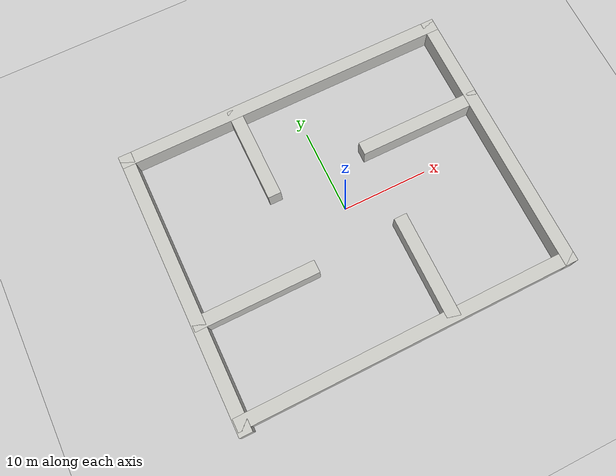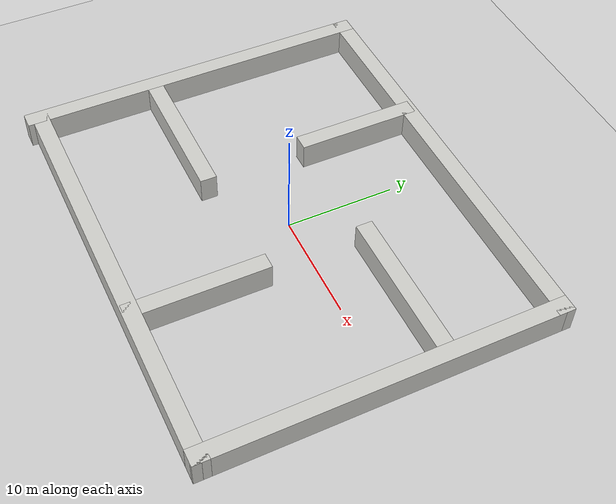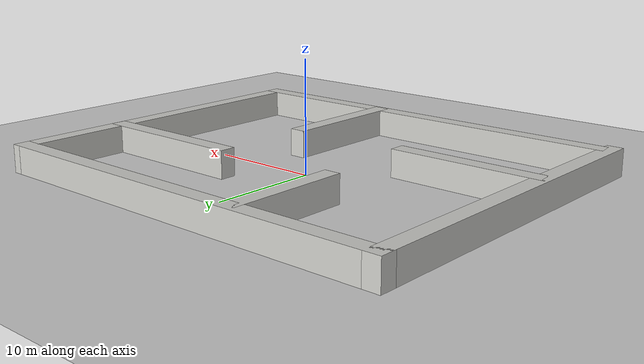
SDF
<sdf version="1.6">
 <world name="default">
  <light name="sun" type="directional">
   <pose>0 0 10 0 -0 0</pose>
   <diffuse>0.8 0.8 0.8 1</diffuse>
   <specular>0.1 0.1 0.1 1</specular>
   <attenuation>
    <range>1000</range>
    <constant>0.9</constant>
    <linear>0.01</linear>
    <quadratic>0.001</quadratic>
   </attenuation>
   <direction>-0.5 0.5 -1</direction>
  </light>
  <model name="ground_plane">
   <static>1</static>
   <link name="link">
    <collision name="collision">
     <geometry><plane><normal>0 0 1</normal><size>100 100</size></plane></geometry>
     <surface><friction><ode><mu>100</mu><mu2>50</mu2></ode></friction></surface>
    </collision>
    <visual name="visual">
     <cast_shadows>0</cast_shadows>
     <geometry><plane><normal>0 0 1</normal><size>100 100</size></plane></geometry>
     <material>
      <script><uri>file://media/materials/scripts/gazebo.material</uri><name>Gazebo/Grey</name></script>
     </material>
    </visual>
   </link>
  </model>
  <gravity>0 0 -9.8</gravity>
  <magnetic_field>6e-06 2.3e-05 -4.2e-05</magnetic_field>
  <atmosphere type="adiabatic"/>
  <physics name="default_physics" default="0" type="ode">
   <max_step_size>0.001</max_step_size>
   <real_time_factor>1</real_time_factor>
   <real_time_update_rate>1000</real_time_update_rate>
  </physics>
  <scene><ambient>0.4 0.4 0.4 1</ambient><background>0.7 0.7 0.7 1</background><shadows>1</shadows></scene>
  <spherical_coordinates>
   <surface_model>EARTH_WGS84</surface_model>
   <latitude_deg>0</latitude_deg>
   <longitude_deg>0</longitude_deg>
   <elevation>0</elevation>
   <heading_deg>0</heading_deg>
  </spherical_coordinates>
  <model name="simplemapmz">
   <pose>-0.45463 -0.739306 0 0 -0 0</pose>
   <link name="Wall_0">
    <collision name="Wall_0_Collision">
     <geometry><box><size>33.25 1.5 2.5</size></box></geometry>
     <pose>0 0 1.25 0 -0 0</pose>
    </collision>
    <visual name="Wall_0_Visual">
     <pose>0 0 1.25 0 -0 0</pose>
     <geometry><box><size>33.25 1.5 2.5</size></box></geometry>
     <material>
      <script><uri>file://media/materials/scripts/gazebo.material</uri><name>Gazebo/CeilingTiled</name></script>
      <ambient>0.921569 0.807843 0.615686 1</ambient>
     </material>
    </visual>
    <pose>-19.1131 -0.001652 0 0 -0 1.57081</pose>
   </link>
   <link name="Wall_10">
    <collision name="Wall_10_Collision">
     <geometry><box><size>14.3496 1.5 2.5</size></box></geometry>
     <pose>0 0 1.25 0 -0 0</pose>
    </collision>
    <visual name="Wall_10_Visual">
     <pose>0 0 1.25 0 -0 0</pose>
     <geometry><box><size>14.3496 1.5 2.5</size></box></geometry>
     <material>
      <script><uri>file://media/materials/scripts/gazebo.material</uri><name>Gazebo/CeilingTiled</name></script>
      <ambient>0.921569 0.807843 0.615686 1</ambient>
     </material>
    </visual>
    <pose>-12.5324 -4.26969 0 0 -0 0</pose>
   </link>
   <link name="Wall_13">
    <collision name="Wall_13_Collision">
     <geometry><box><size>14.85 1.5 2.5</size></box></geometry>
     <pose>0 0 1.25 0 -0 0</pose>
    </collision>
    <visual name="Wall_13_Visual">
     <pose>0 0 1.25 0 -0 0</pose>
     <geometry><box><size>14.85 1.5 2.5</size></box></geometry>
     <material>
      <script><uri>file://media/materials/scripts/gazebo.material</uri><name>Gazebo/CeilingTiled</name></script>
      <ambient>0.921569 0.807843 0.615686 1</ambient>
     </material>
    </visual>
    <pose>12.3146 5.60431 0 0 -0 3.14159</pose>
   </link>
   <link name="Wall_15">
    <collision name="Wall_15_Collision">
     <geometry><box><size>12.6003 1.5 2.5</size></box></geometry>
     <pose>0 0 1.25 0 -0 0</pose>
    </collision>
    <visual name="Wall_15_Visual">
     <pose>0 0 1.25 0 -0 0</pose>
     <geometry><box><size>12.6003 1.5 2.5</size></box></geometry>
     <material>
      <script><uri>file://media/materials/scripts/gazebo.material</uri><name>Gazebo/CeilingTiled</name></script>
      <ambient>0.921569 0.807843 0.615686 1</ambient>
     </material>
    </visual>
    <pose>5.12163 -9.56869 0 0 0 -1.5708</pose>
   </link>
   <link name="Wall_4">
    <collision name="Wall_4_Collision">
     <geometry><box><size>39.6005 1.5 2.5</size></box></geometry>
     <pose>0 0 1.25 0 -0 0</pose>
    </collision>
    <visual name="Wall_4_Visual">
     <pose>0 0 1.25 0 -0 0</pose>
     <geometry><box><size>39.6005 1.5 2.5</size></box></geometry>
     <material>
      <script><uri>file://media/materials/scripts/gazebo.material</uri><name>Gazebo/CeilingTiled</name></script>
      <ambient>0.921569 0.807843 0.615686 1</ambient>
     </material>
    </visual>
    <pose>-0.06337 15.8733 0 0 -0 0</pose>
   </link>
   <link name="Wall_5">
    <collision name="Wall_5_Collision">
     <geometry><box><size>32.596 1.5 2.5</size></box></geometry>
     <pose>0 0 1.25 0 -0 0</pose>
    </collision>
    <visual name="Wall_5_Visual">
     <pose>0 0 1.25 0 -0 0</pose>
     <geometry><box><size>32.596 1.5 2.5</size></box></geometry>
     <material>
      <script><uri>file://media/materials/scripts/gazebo.material</uri><name>Gazebo/CeilingTiled</name></script>
      <ambient>0.921569 0.807843 0.615686 1</ambient>
     </material>
    </visual>
    <pose>19.0486 0.325806 0 0 0 -1.56681</pose>
   </link>
   <link name="Wall_6">
    <collision name="Wall_6_Collision">
     <geometry><box><size>39.6 1.5 2.5</size></box></geometry>
     <pose>0 0 1.25 0 -0 0</pose>
    </collision>
    <visual name="Wall_6_Visual">
     <pose>0 0 1.25 0 -0 0</pose>
     <geometry><box><size>39.6 1.5 2.5</size></box></geometry>
     <material>
      <script><uri>file://media/materials/scripts/gazebo.material</uri><name>Gazebo/CeilingTiled</name></script>
      <ambient>0.921569 0.807843 0.615686 1</ambient>
     </material>
    </visual>
    <pose>0.06063 -15.2837 0 0 0 -3.13834</pose>
   </link>
   <link name="Wall_8">
    <collision name="Wall_8_Collision">
     <geometry><box><size>11.35 1.5 2.5</size></box></geometry>
     <pose>0 0 1.25 0 -0 0</pose>
    </collision>
    <visual name="Wall_8_Visual">
     <pose>0 0 1.25 0 -0 0</pose>
     <geometry><box><size>11.35 1.5 2.5</size></box></geometry>
     <material>
      <script><uri>file://media/materials/scripts/gazebo.material</uri><name>Gazebo/CeilingTiled</name></script>
      <ambient>0.921569 0.807843 0.615686 1</ambient>
     </material>
    </visual>
    <pose>-6.08737 10.6063 0 0 0 -1.5708</pose>
   </link>
   <static>1</static>
  </model>
 </world>
</sdf>
